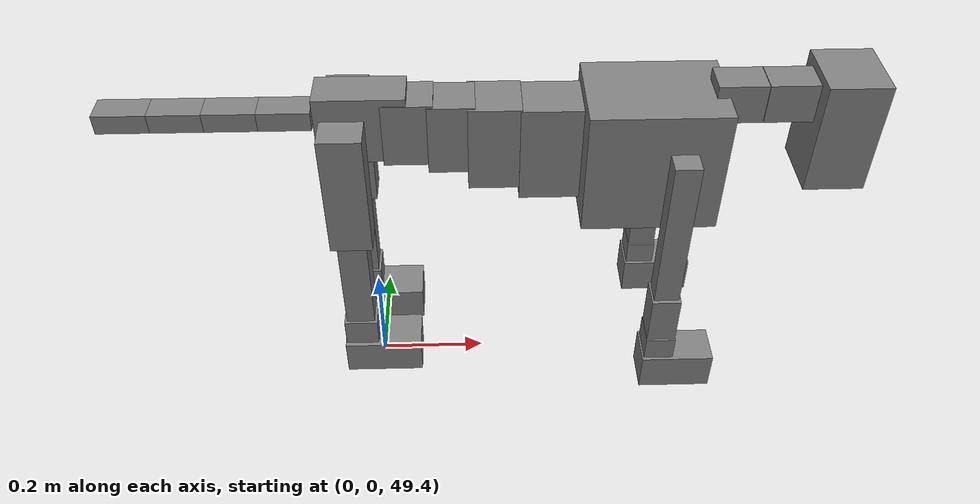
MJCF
<mujoco model="dog">

    <default>
        <joint armature="0.02" stiffness="1" damping="0.2" limited="true"/>
        <geom condim="3" friction="1 0.05 0.05" margin="0.01"/>
        <motor ctrllimited="true" ctrlrange="-1.0 1.0" forcelimited="true" gear="50"/>
    </default>

    <compiler inertiafromgeom="true" angle="radian"/>

    <option timestep="0.016" iterations="50" tolerance="1e-10" solver="Newton" jacobian="dense" cone="pyramidal"/>

    <size nconmax="20000" njmax="60000" nstack="5000000"/>
    <visual>
        <map force="0.1" zfar="30"/>
        <rgba haze="0.15 0.25 0.35 1"/>
        <quality shadowsize="2048"/>
        <global offwidth="800" offheight="800"/>
    </visual>

    <asset>
        <texture type="skybox" builtin="gradient" rgb1="0.3 0.5 0.7" rgb2="0 0 0" width="512" height="512"/>
        <texture name="texplane" type="2d" builtin="checker" rgb1=".2 .3 .4" rgb2=".1 0.15 0.2" width="512" height="512"
                 mark="cross" markrgb=".8 .8 .8"/>
        <texture name="texgeom" type="cube" builtin="flat" mark="cross" width="127" height="1278" rgb1="0.8 0.6 0.4"
                 rgb2="0.8 0.6 0.4" markrgb="1 1 1" random="0.01"/>

        <material name="matplane" reflectance="0.3" texture="texplane" texrepeat="1 1" texuniform="true"/>
        <material name="matgeom" texture="texgeom" texuniform="true" rgba="0.8 0.6 .4 1"/>
    </asset>

    <worldbody>
        <geom name="floor" pos="0 0 0" size="0 0 .25" type="plane" material="matplane" condim="3"/>

        <light directional="false" diffuse=".2 .2 .2" specular="0 0 0" pos="0 0 5" dir="0 0 -1" castshadow="false"/>
        <light mode="targetbodycom" target="torso" directional="false" diffuse=".8 .8 .8" specular="0.3 0.3 0.3"
               pos="0 0 4.0" dir="0 0 -1"/>

        <body name="root" pos="0 0 50">
            <freejoint name="root_1"/>
            <geom type="box" pos="0 0 -0.02" size="0.0774  0.0358  0.063" density="2030"/>

            <body name="spine1" pos="0.054 0 0">
                <joint name="spine1_y" axis="0 1 0" range="0 0.7" limited="true"/>
                <geom type="box" pos="0.02375 0 -0.03" size="0.04375  0.0375  0.05985" density="2030"/>

                <body name="spine2" pos="0.0612 0 0">
                    <joint name="spine2_y" axis="0 1 0" range="-0.15 0.15" limited="true"/>
                    <geom type="box" pos="0.03555  0  -0.04" size="0.04055  0.039  0.06615" density="2030"/>

                    <body name="spine3" pos="0.0730 0 0">
                        <joint name="spine3_y" axis="0 1 0" range="-0.15 0.15" limited="true"/>
                        <geom type="box" pos="0.03555  0  -0.057" size="0.04555  0.0445  0.081" density="2030"/>

                        <body name="spine4" pos="0.0780 0 0">
                            <joint name="spine4_y" axis="0 1 0" range="-0.15 0.15" limited="true"/>
                            <geom type="box" pos="0.05265  0  -0.07" size="0.05265  0.045  0.09135" density="2030"/>

                            <body name="torso" pos="0.1082 0 0">
                                <joint name="torso_y" axis="0 1 0" range="-0.15 0.15" limited="true"/>
                                <geom type="box" pos="0.11925  0  -0.085" size="0.11925  0.085  0.11745"
                                      density="2030"/>

                                <body name="neck1" pos="0.2160  0   0.0180">
                                    <joint name="neck1_y" axis="0 1 0" range="-1.2  -1" limited="true"/>
                                    <geom type="box" pos="0.0423  0  0" size="0.0423  0.03  0.036" density="2325"/>

                                    <body name="neck2" pos="0.0853  0  0">
                                        <joint name="neck2_y" axis="0 1 0" range="0.1  0" limited="true"/>
                                        <geom type="box" pos="0.0423  0  0" size="0.0423  0.03  0.036" density="2325"/>

                                        <body name="head" pos="0.0853  0  0">
                                            <joint name="head_y" axis="0 1 0" range="-0.3  -0.2" limited="true"/>
                                            <geom type="box" pos="0.0531  0  -0.055" size="0.0531  0.06  0.1044"
                                                  density="4030"/>

                                        </body>
                                    </body>
                                </body>

                                <body name="front_shoulder" pos="0.156  0   -0.0480">
                                    <joint name="front_shoulder_y" axis="0 1 0" range="-1 1.5" limited="true"/>
                                    <geom type="box" pos="0 0.13 -0.1365" size="0.0228  0.0195  0.1632" density="1158"/>
                                    <geom type="box" pos="0 -0.13 -0.1365" size="0.0228  0.0195  0.1632"
                                          density="1158"/>

                                    <body name="front_elbow" pos="0  0  -0.2731">
                                        <joint name="front_elbow_y" axis="0 1 0" range="-2 0" limited="true"/>
                                        <geom type="box" pos="0 0.13 -0.0549" size="0.0260  0.0266  0.0549"
                                              density="1081"/>
                                        <geom type="box" pos="0 -0.13 -0.0549" size="0.0260  0.0266  0.0549"
                                              density="1081"/>

                                        <body name="front_wrist" pos="0  0  -0.1097">
                                            <joint name="front_wrist_y" axis="0 1 0" range="-0.2 0" limited="true"/>
                                            <geom type="box" pos="0 0.13 -0.0245" size="0.0271  0.0301  0.0376"
                                                  density="1664"/>
                                            <geom type="box" pos="0 -0.13 -0.0245" size="0.0271  0.0301  0.0376"
                                                  density="1664"/>

                                            <body name="front_finger_end" pos="0  0  -0.0490">
                                                <joint name="front_finger_y" axis="0 1 0" range="-0.4 1"
                                                       limited="true"/>
                                                <geom type="box" pos="0.0362  0.13  -0.0223"
                                                      size="0.0664  0.0362  0.0373" density="1515"/>
                                                <geom type="box" pos="0.0362  -0.13  -0.0223"
                                                      size="0.0664  0.0362  0.0373" density="1515"/>

                                            </body>

                                        </body>
                                    </body>
                                </body>

                            </body>
                        </body>
                    </body>
                </body>
            </body>

            <body name="back_hip" pos="-0.03 0 -0.018">
                <joint name="back_hip_y" axis="0 1 0" range="-1.5 0.3" limited="true"/>
                <geom type="box" pos="0 0.07 -0.0952" size="0.0374  0.0293  0.1180" density="1154"/>
                <geom type="box" pos="0 -0.07 -0.0952" size="0.0374  0.0293  0.1180" density="1154"/>

                <body name="back_knee" pos="0  0  -0.1905">
                    <joint name="back_knee_y" axis="0 1 0" range="0 2.8" limited="true"/>
                    <geom type="box" pos="0 0.07 -0.1107" size="0.0262  0.0258  0.1263" density="1227"/>
                    <geom type="box" pos="0 -0.07 -0.1107" size="0.0262  0.0258  0.1263" density="1227"/>

                    <body name="back_ankle" pos="0  0  -0.2215">
                        <joint name="back_ankle_y" axis="0 1 0" range="-2.2 0" limited="true"/>
                        <geom type="box" pos="0 0.07 -0.0292" size="0.0308  0.0308  0.0405" density="1284"/>
                        <geom type="box" pos="0 -0.07 -0.0292" size="0.0308  0.0308  0.0405" density="1284"/>

                        <body name="back_toe_end" pos="0  0  -0.0585">
                            <joint name="back_toe_y" axis="0 1 0" range="-0.4 1" limited="true"/>
                            <geom type="box" pos="0.0394  0.07  -0.0196" size="0.0722  0.0394  0.0346" density="1515"/>
                            <geom type="box" pos="0.0394  -0.07  -0.0196" size="0.0722  0.0394  0.0346" density="1515"/>

                        </body>
                    </body>
                </body>
            </body>

            <body name="tail1" pos="-0.074 0 -0.006">
                <joint name="tail1_y" axis="0 1 0" range="-0.2 0.2" limited="true"/>
                <geom type="box" pos="-0.0536  0  0" size="0.045  0.025  0.0175" density="1587"/>

                <body name="tail2" pos="-0.09 0 0">
                    <joint name="tail2_y" axis="0 1 0" range="-0.2 0.2" limited="true"/>
                    <geom type="box" pos="-0.0536  0  0" size="0.045  0.025  0.0175" density="1587"/>

                    <body name="tail3" pos="-0.09 0 0">
                        <joint name="tail3_y" axis="0 1 0" range="-0.2 0.2" limited="true"/>
                        <geom type="box" pos="-0.0536  0  0" size="0.045  0.025  0.0175" density="1587"/>

                        <body name="tail4" pos="-0.09 0 0">
                            <joint name="tail4_y" axis="0 1 0" range="-0.2 0.2" limited="true"/>
                            <geom type="box" pos="-0.0536  0  0" size="0.045  0.025  0.0175" density="1587"/>

                        </body>
                    </body>
                </body>
            </body>
        </body>
    </worldbody>

    <actuator>
        <motor joint="spine1_y" forcerange="-150 150     "/>
        <motor joint="spine2_y" forcerange="-150 150     "/>
        <motor joint="spine3_y" forcerange="-150 150     "/>
        <motor joint="spine4_y" forcerange="-150 150     "/>
        <motor joint="torso_y" forcerange="-150 150     "/>
        <motor joint="neck1_y" forcerange="-100 100       "/>
        <motor joint="neck2_y" forcerange="-100 100       "/>
        <motor joint="head_y" forcerange="-150 150       "/>
        <motor joint="front_shoulder_y" forcerange="-125.26 104.46"/>
        <motor joint="front_elbow_y" forcerange="-123.55 169.88"/>
        <motor joint="front_wrist_y" forcerange="-102.76 138.43"/>
        <motor joint="front_finger_y" forcerange="-87.98 65.05"/>
        <motor joint="back_hip_y" forcerange="-380.98 209.76"/>
        <motor joint="back_knee_y" forcerange="-327.85 247.91"/>
        <motor joint="back_angle_y" forcerange="-236.79 155.87"/>
        <motor joint="back_toe_y" forcerange="-116.31 118.83"/>
        <motor joint="tail1_y" forcerange="-50 50     "/>
        <motor joint="tail2_y" forcerange="-50 50     "/>
        <motor joint="tail3_y" forcerange="-50 50     "/>
        <motor joint="tail4_y" forcerange="-50 50     "/>
    </actuator>
</mujoco>
